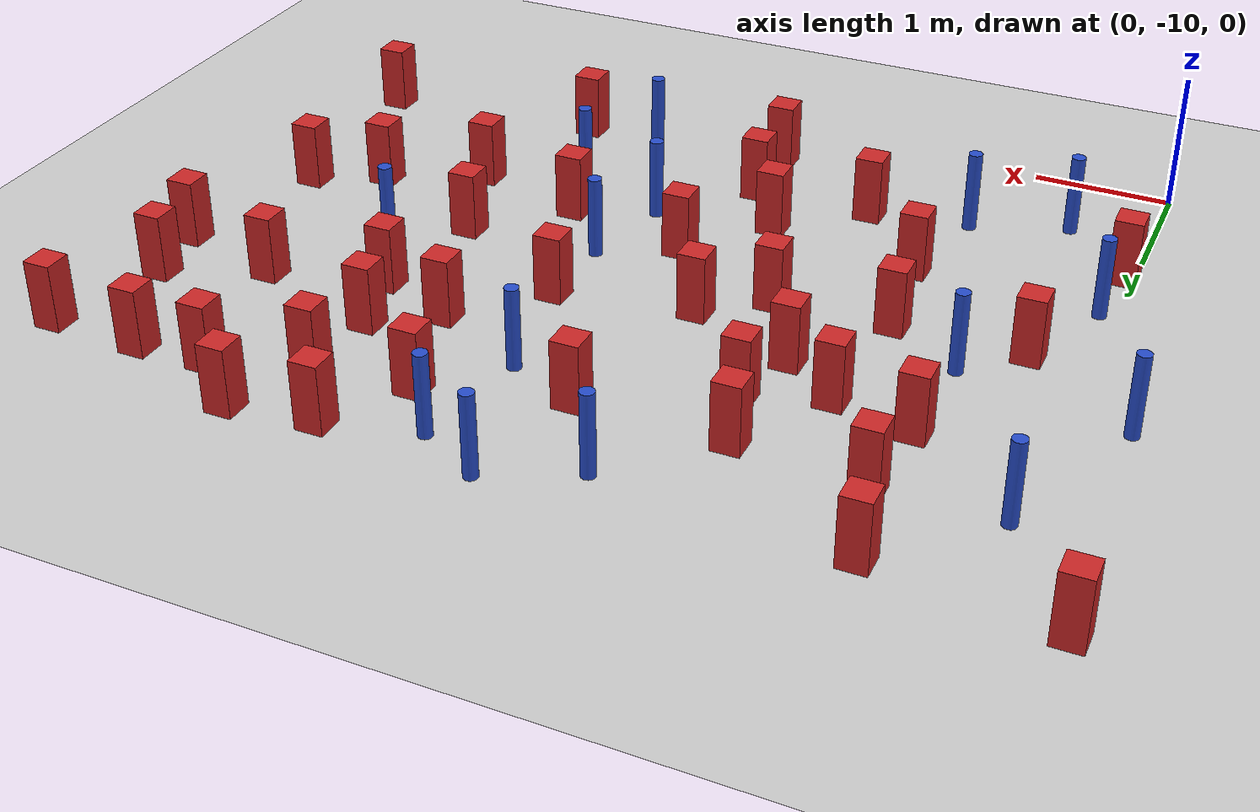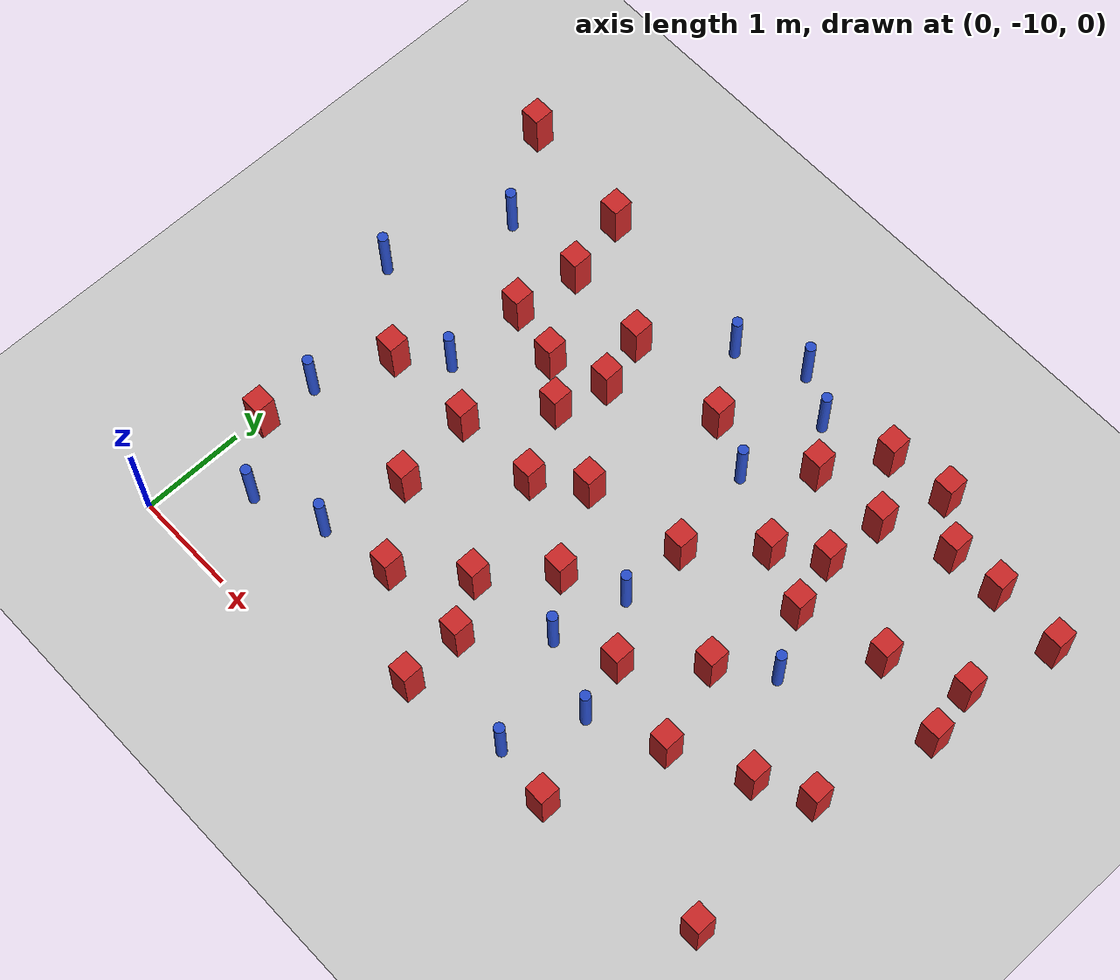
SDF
<sdf version="1.6">
 <world name="default">
  <model name="ground_plane">
   <static>1</static>
   <link name="link">
    <collision name="collision">
     <geometry><plane><normal>0 0 1</normal><size>100 100</size></plane></geometry>
     <surface><friction><ode><mu>100</mu><mu2>50</mu2></ode></friction></surface>
    </collision>
    <visual name="visual">
     <cast_shadows>0</cast_shadows>
     <geometry><plane><normal>0 0 1</normal><size>100 100</size></plane></geometry>
     <material>
      <ambient>1.0 1.0 1.0 1.0</ambient>
      <diffuse>0.8 0.8 0.8 1.0</diffuse>
      <specular>0.01 0.01 0.01 1.000000</specular>
     </material>
    </visual>
   </link>
  </model>
  <model name="square_post_obstacle0">
   <static>true</static>
   <pose>6.00057806063 -7.67909115086 1.91545236811e-07 -7.35059704564e-06 1.12565212e-07 2.39332434364e-05</pose>
   <link name="link">
    <pose>0 0 0.25 0 -0 0</pose>
    <inertial>
     <mass>100</mass>
     <inertia>
      <ixx>0.166667</ixx>
      <ixy>0</ixy>
      <ixz>0</ixz>
      <iyy>0.166667</iyy>
      <iyz>0</iyz>
      <izz>0.166667</izz>
     </inertia>
    </inertial>
    <collision name="collision"><geometry><box><size>.2 .2 .5</size></box></geometry></collision>
    <visual name="visual">
     <geometry><box><size>.2 .2 .5</size></box></geometry>
     <material>
      <script><name>Gazebo/Red</name><uri>file://media/materials/scripts/gazebo.material</uri></script>
     </material>
    </visual>
   </link>
  </model>
  <model name="square_post_obstacle6">
   <static>true</static>
   <pose>4.81548271422 -8.25875250711 1.91545236811e-07 -7.35059704564e-06 1.12565212e-07 2.39332434364e-05</pose>
   <link name="link">
    <pose>0 0 0.25 0 -0 0</pose>
    <inertial>
     <mass>100</mass>
     <inertia>
      <ixx>0.166667</ixx>
      <ixy>0</ixy>
      <ixz>0</ixz>
      <iyy>0.166667</iyy>
      <iyz>0</iyz>
      <izz>0.166667</izz>
     </inertia>
    </inertial>
    <collision name="collision"><geometry><box><size>.2 .2 .5</size></box></geometry></collision>
    <visual name="visual">
     <geometry><box><size>.2 .2 .5</size></box></geometry>
     <material>
      <script><name>Gazebo/Red</name><uri>file://media/materials/scripts/gazebo.material</uri></script>
     </material>
    </visual>
   </link>
  </model>
  <model name="square_post_obstacle7">
   <static>true</static>
   <pose>0.069519349708 -8.7268812761 1.91545236811e-07 -7.35059704564e-06 1.12565212e-07 2.39332434364e-05</pose>
   <link name="link">
    <pose>0 0 0.25 0 -0 0</pose>
    <inertial>
     <mass>100</mass>
     <inertia>
      <ixx>0.166667</ixx>
      <ixy>0</ixy>
      <ixz>0</ixz>
      <iyy>0.166667</iyy>
      <iyz>0</iyz>
      <izz>0.166667</izz>
     </inertia>
    </inertial>
    <collision name="collision"><geometry><box><size>.2 .2 .5</size></box></geometry></collision>
    <visual name="visual">
     <geometry><box><size>.2 .2 .5</size></box></geometry>
     <material>
      <script><name>Gazebo/Red</name><uri>file://media/materials/scripts/gazebo.material</uri></script>
     </material>
    </visual>
   </link>
  </model>
  <model name="square_post_obstacle11">
   <static>true</static>
   <pose>2.8487803578 -8.86418214256 1.91545236811e-07 -7.35059704564e-06 1.12565212e-07 2.39332434364e-05</pose>
   <link name="link">
    <pose>0 0 0.25 0 -0 0</pose>
    <inertial>
     <mass>100</mass>
     <inertia>
      <ixx>0.166667</ixx>
      <ixy>0</ixy>
      <ixz>0</ixz>
      <iyy>0.166667</iyy>
      <iyz>0</iyz>
      <izz>0.166667</izz>
     </inertia>
    </inertial>
    <collision name="collision"><geometry><box><size>.2 .2 .5</size></box></geometry></collision>
    <visual name="visual">
     <geometry><box><size>.2 .2 .5</size></box></geometry>
     <material>
      <script><name>Gazebo/Red</name><uri>file://media/materials/scripts/gazebo.material</uri></script>
     </material>
    </visual>
   </link>
  </model>
  <model name="pole_obstacle22">
   <static>true</static>
   <pose>3.84698611713 -9.26494027626 7.38925637345e-09 -8.47170692793e-08 1.24976764408e-08 -1.74513093041e-07</pose>
   <link name="link">
    <pose>0 0 0.3 0 -0 0</pose>
    <inertial>
     <mass>1</mass>
     <inertia><ixx>0.145833</ixx><ixy>0</ixy><ixz>0</ixz><iyy>0.145833</iyy><iyz>0</iyz><izz>0.125</izz></inertia>
    </inertial>
    <collision name="collision">
     <geometry><cylinder><radius>0.05</radius><length>.6</length></cylinder></geometry>
    </collision>
    <visual name="visual">
     <geometry><cylinder><radius>0.05</radius><length>.6</length></cylinder></geometry>
     <material>
      <script><name>Gazebo/Blue</name><uri>file://media/materials/scripts/gazebo.material</uri></script>
     </material>
    </visual>
   </link>
  </model>
  <model name="square_post_obstacle19">
   <static>true</static>
   <pose>2.55045895626 -8.40171326037 1.91545236811e-07 -7.35059704564e-06 1.12565212e-07 2.39332434364e-05</pose>
   <link name="link">
    <pose>0 0 0.25 0 -0 0</pose>
    <inertial>
     <mass>100</mass>
     <inertia>
      <ixx>0.166667</ixx>
      <ixy>0</ixy>
      <ixz>0</ixz>
      <iyy>0.166667</iyy>
      <iyz>0</iyz>
      <izz>0.166667</izz>
     </inertia>
    </inertial>
    <collision name="collision"><geometry><box><size>.2 .2 .5</size></box></geometry></collision>
    <visual name="visual">
     <geometry><box><size>.2 .2 .5</size></box></geometry>
     <material>
      <script><name>Gazebo/Red</name><uri>file://media/materials/scripts/gazebo.material</uri></script>
     </material>
    </visual>
   </link>
  </model>
  <model name="pole_obstacle31">
   <static>true</static>
   <pose>0.11666212151 -8.17878752543 7.38925637345e-09 -8.47170692796e-08 1.24976764716e-08 -1.74513093036e-07</pose>
   <link name="link">
    <pose>0 0 0.3 0 -0 0</pose>
    <inertial>
     <mass>1</mass>
     <inertia><ixx>0.145833</ixx><ixy>0</ixy><ixz>0</ixz><iyy>0.145833</iyy><iyz>0</iyz><izz>0.125</izz></inertia>
    </inertial>
    <collision name="collision">
     <geometry><cylinder><radius>0.05</radius><length>.6</length></cylinder></geometry>
    </collision>
    <visual name="visual">
     <geometry><cylinder><radius>0.05</radius><length>.6</length></cylinder></geometry>
     <material>
      <script><name>Gazebo/Blue</name><uri>file://media/materials/scripts/gazebo.material</uri></script>
     </material>
    </visual>
   </link>
  </model>
  <model name="pole_obstacle42">
   <static>true</static>
   <pose>1.25775804358 -9.023013283 7.38925637345e-09 -8.47170692798e-08 1.24976764881e-08 -1.74513093027e-07</pose>
   <link name="link">
    <pose>0 0 0.3 0 -0 0</pose>
    <inertial>
     <mass>1</mass>
     <inertia><ixx>0.145833</ixx><ixy>0</ixy><ixz>0</ixz><iyy>0.145833</iyy><iyz>0</iyz><izz>0.125</izz></inertia>
    </inertial>
    <collision name="collision">
     <geometry><cylinder><radius>0.05</radius><length>.6</length></cylinder></geometry>
    </collision>
    <visual name="visual">
     <geometry><cylinder><radius>0.05</radius><length>.6</length></cylinder></geometry>
     <material>
      <script><name>Gazebo/Blue</name><uri>file://media/materials/scripts/gazebo.material</uri></script>
     </material>
    </visual>
   </link>
  </model>
  <model name="square_post_obstacle35">
   <static>true</static>
   <pose>1.40759328073 -6.44161735415 1.91545236811e-07 -7.35059704564e-06 1.12565212e-07 2.39332434364e-05</pose>
   <link name="link">
    <pose>0 0 0.25 0 -0 0</pose>
    <inertial>
     <mass>100</mass>
     <inertia>
      <ixx>0.166667</ixx>
      <ixy>0</ixy>
      <ixz>0</ixz>
      <iyy>0.166667</iyy>
      <iyz>0</iyz>
      <izz>0.166667</izz>
     </inertia>
    </inertial>
    <collision name="collision"><geometry><box><size>.2 .2 .5</size></box></geometry></collision>
    <visual name="visual">
     <geometry><box><size>.2 .2 .5</size></box></geometry>
     <material>
      <script><name>Gazebo/Red</name><uri>file://media/materials/scripts/gazebo.material</uri></script>
     </material>
    </visual>
   </link>
  </model>
  <model name="pole_obstacle54">
   <static>true</static>
   <pose>3.54483944324 -5.08276452937 7.38925637345e-09 -8.47170692798e-08 1.24976765033e-08 -1.74513093019e-07</pose>
   <link name="link">
    <pose>0 0 0.3 0 -0 0</pose>
    <inertial>
     <mass>1</mass>
     <inertia><ixx>0.145833</ixx><ixy>0</ixy><ixz>0</ixz><iyy>0.145833</iyy><iyz>0</iyz><izz>0.125</izz></inertia>
    </inertial>
    <collision name="collision">
     <geometry><cylinder><radius>0.05</radius><length>.6</length></cylinder></geometry>
    </collision>
    <visual name="visual">
     <geometry><cylinder><radius>0.05</radius><length>.6</length></cylinder></geometry>
     <material>
      <script><name>Gazebo/Blue</name><uri>file://media/materials/scripts/gazebo.material</uri></script>
     </material>
    </visual>
   </link>
  </model>
  <model name="square_post_obstacle44">
   <static>true</static>
   <pose>6.20261944694 -6.03981193328 1.91545236811e-07 -7.35059704564e-06 1.12565212e-07 2.39332434364e-05</pose>
   <link name="link">
    <pose>0 0 0.25 0 -0 0</pose>
    <inertial>
     <mass>100</mass>
     <inertia>
      <ixx>0.166667</ixx>
      <ixy>0</ixy>
      <ixz>0</ixz>
      <iyy>0.166667</iyy>
      <iyz>0</iyz>
      <izz>0.166667</izz>
     </inertia>
    </inertial>
    <collision name="collision"><geometry><box><size>.2 .2 .5</size></box></geometry></collision>
    <visual name="visual">
     <geometry><box><size>.2 .2 .5</size></box></geometry>
     <material>
      <script><name>Gazebo/Red</name><uri>file://media/materials/scripts/gazebo.material</uri></script>
     </material>
    </visual>
   </link>
  </model>
  <model name="square_post_obstacle46">
   <static>true</static>
   <pose>4.45149385676 -9.33843573267 1.91545236811e-07 -7.35059704564e-06 1.12565212e-07 2.39332434364e-05</pose>
   <link name="link">
    <pose>0 0 0.25 0 -0 0</pose>
    <inertial>
     <mass>100</mass>
     <inertia>
      <ixx>0.166667</ixx>
      <ixy>0</ixy>
      <ixz>0</ixz>
      <iyy>0.166667</iyy>
      <iyz>0</iyz>
      <izz>0.166667</izz>
     </inertia>
    </inertial>
    <collision name="collision"><geometry><box><size>.2 .2 .5</size></box></geometry></collision>
    <visual name="visual">
     <geometry><box><size>.2 .2 .5</size></box></geometry>
     <material>
      <script><name>Gazebo/Red</name><uri>file://media/materials/scripts/gazebo.material</uri></script>
     </material>
    </visual>
   </link>
  </model>
  <model name="square_post_obstacle48">
   <static>true</static>
   <pose>5.51277770925 -7.9259552581 1.91545236811e-07 -7.35059704564e-06 1.12565212e-07 2.39332434364e-05</pose>
   <link name="link">
    <pose>0 0 0.25 0 -0 0</pose>
    <inertial>
     <mass>100</mass>
     <inertia>
      <ixx>0.166667</ixx>
      <ixy>0</ixy>
      <ixz>0</ixz>
      <iyy>0.166667</iyy>
      <iyz>0</iyz>
      <izz>0.166667</izz>
     </inertia>
    </inertial>
    <collision name="collision"><geometry><box><size>.2 .2 .5</size></box></geometry></collision>
    <visual name="visual">
     <geometry><box><size>.2 .2 .5</size></box></geometry>
     <material>
      <script><name>Gazebo/Red</name><uri>file://media/materials/scripts/gazebo.material</uri></script>
     </material>
    </visual>
   </link>
  </model>
  <model name="square_post_obstacle52">
   <static>true</static>
   <pose>6.29798405064 -6.54312254069 1.91545236811e-07 -7.35059704564e-06 1.12565212e-07 2.39332434364e-05</pose>
   <link name="link">
    <pose>0 0 0.25 0 -0 0</pose>
    <inertial>
     <mass>100</mass>
     <inertia>
      <ixx>0.166667</ixx>
      <ixy>0</ixy>
      <ixz>0</ixz>
      <iyy>0.166667</iyy>
      <iyz>0</iyz>
      <izz>0.166667</izz>
     </inertia>
    </inertial>
    <collision name="collision"><geometry><box><size>.2 .2 .5</size></box></geometry></collision>
    <visual name="visual">
     <geometry><box><size>.2 .2 .5</size></box></geometry>
     <material>
      <script><name>Gazebo/Red</name><uri>file://media/materials/scripts/gazebo.material</uri></script>
     </material>
    </visual>
   </link>
  </model>
  <model name="square_post_obstacle55">
   <static>true</static>
   <pose>1.97393594926 -8.88778729679 1.91545236811e-07 -7.35059704564e-06 1.12565212e-07 2.39332434364e-05</pose>
   <link name="link">
    <pose>0 0 0.25 0 -0 0</pose>
    <inertial>
     <mass>100</mass>
     <inertia>
      <ixx>0.166667</ixx>
      <ixy>0</ixy>
      <ixz>0</ixz>
      <iyy>0.166667</iyy>
      <iyz>0</iyz>
      <izz>0.166667</izz>
     </inertia>
    </inertial>
    <collision name="collision"><geometry><box><size>.2 .2 .5</size></box></geometry></collision>
    <visual name="visual">
     <geometry><box><size>.2 .2 .5</size></box></geometry>
     <material>
      <script><name>Gazebo/Red</name><uri>file://media/materials/scripts/gazebo.material</uri></script>
     </material>
    </visual>
   </link>
  </model>
  <model name="pole_obstacle70">
   <static>true</static>
   <pose>3.56956613083 -7.54567112583 7.38925637345e-09 -8.47170692798e-08 1.24976765033e-08 -1.74513093019e-07</pose>
   <link name="link">
    <pose>0 0 0.3 0 -0 0</pose>
    <inertial>
     <mass>1</mass>
     <inertia><ixx>0.145833</ixx><ixy>0</ixy><ixz>0</ixz><iyy>0.145833</iyy><iyz>0</iyz><izz>0.125</izz></inertia>
    </inertial>
    <collision name="collision">
     <geometry><cylinder><radius>0.05</radius><length>.6</length></cylinder></geometry>
    </collision>
    <visual name="visual">
     <geometry><cylinder><radius>0.05</radius><length>.6</length></cylinder></geometry>
     <material>
      <script><name>Gazebo/Blue</name><uri>file://media/materials/scripts/gazebo.material</uri></script>
     </material>
    </visual>
   </link>
  </model>
  <model name="pole_obstacle71">
   <static>true</static>
   <pose>4.99633791195 -7.09765231327 7.38925637345e-09 -8.47170692796e-08 1.24976764786e-08 -1.74513093032e-07</pose>
   <link name="link">
    <pose>0 0 0.3 0 -0 0</pose>
    <inertial>
     <mass>1</mass>
     <inertia><ixx>0.145833</ixx><ixy>0</ixy><ixz>0</ixz><iyy>0.145833</iyy><iyz>0</iyz><izz>0.125</izz></inertia>
    </inertial>
    <collision name="collision">
     <geometry><cylinder><radius>0.05</radius><length>.6</length></cylinder></geometry>
    </collision>
    <visual name="visual">
     <geometry><cylinder><radius>0.05</radius><length>.6</length></cylinder></geometry>
     <material>
      <script><name>Gazebo/Blue</name><uri>file://media/materials/scripts/gazebo.material</uri></script>
     </material>
    </visual>
   </link>
  </model>
  <model name="square_post_obstacle67">
   <static>true</static>
   <pose>0.417193339511 -7.45800182221 1.91545236811e-07 -7.35059704564e-06 1.12565212e-07 2.39332434364e-05</pose>
   <link name="link">
    <pose>0 0 0.25 0 -0 0</pose>
    <inertial>
     <mass>100</mass>
     <inertia>
      <ixx>0.166667</ixx>
      <ixy>0</ixy>
      <ixz>0</ixz>
      <iyy>0.166667</iyy>
      <iyz>0</iyz>
      <izz>0.166667</izz>
     </inertia>
    </inertial>
    <collision name="collision"><geometry><box><size>.2 .2 .5</size></box></geometry></collision>
    <visual name="visual">
     <geometry><box><size>.2 .2 .5</size></box></geometry>
     <material>
      <script><name>Gazebo/Red</name><uri>file://media/materials/scripts/gazebo.material</uri></script>
     </material>
    </visual>
   </link>
  </model>
  <model name="pole_obstacle87">
   <static>true</static>
   <pose>0.0718617288998 -5.69445943101 7.38925637345e-09 -8.47170692798e-08 1.24976765034e-08 -1.74513093019e-07</pose>
   <link name="link">
    <pose>0 0 0.3 0 -0 0</pose>
    <inertial>
     <mass>1</mass>
     <inertia><ixx>0.145833</ixx><ixy>0</ixy><ixz>0</ixz><iyy>0.145833</iyy><iyz>0</iyz><izz>0.125</izz></inertia>
    </inertial>
    <collision name="collision">
     <geometry><cylinder><radius>0.05</radius><length>.6</length></cylinder></geometry>
    </collision>
    <visual name="visual">
     <geometry><cylinder><radius>0.05</radius><length>.6</length></cylinder></geometry>
     <material>
      <script><name>Gazebo/Blue</name><uri>file://media/materials/scripts/gazebo.material</uri></script>
     </material>
    </visual>
   </link>
  </model>
  <model name="pole_obstacle88">
   <static>true</static>
   <pose>2.46176348016 -5.12404222048 7.38925637345e-09 -8.47170692798e-08 1.24976765033e-08 -1.74513093019e-07</pose>
   <link name="link">
    <pose>0 0 0.3 0 -0 0</pose>
    <inertial>
     <mass>1</mass>
     <inertia><ixx>0.145833</ixx><ixy>0</ixy><ixz>0</ixz><iyy>0.145833</iyy><iyz>0</iyz><izz>0.125</izz></inertia>
    </inertial>
    <collision name="collision">
     <geometry><cylinder><radius>0.05</radius><length>.6</length></cylinder></geometry>
    </collision>
    <visual name="visual">
     <geometry><cylinder><radius>0.05</radius><length>.6</length></cylinder></geometry>
     <material>
      <script><name>Gazebo/Blue</name><uri>file://media/materials/scripts/gazebo.material</uri></script>
     </material>
    </visual>
   </link>
  </model>
  <model name="square_post_obstacle83">
   <static>true</static>
   <pose>3.03000625993 -7.81368479536 1.91545236811e-07 -7.35059704564e-06 1.12565212e-07 2.39332434364e-05</pose>
   <link name="link">
    <pose>0 0 0.25 0 -0 0</pose>
    <inertial>
     <mass>100</mass>
     <inertia>
      <ixx>0.166667</ixx>
      <ixy>0</ixy>
      <ixz>0</ixz>
      <iyy>0.166667</iyy>
      <iyz>0</iyz>
      <izz>0.166667</izz>
     </inertia>
    </inertial>
    <collision name="collision"><geometry><box><size>.2 .2 .5</size></box></geometry></collision>
    <visual name="visual">
     <geometry><box><size>.2 .2 .5</size></box></geometry>
     <material>
      <script><name>Gazebo/Red</name><uri>file://media/materials/scripts/gazebo.material</uri></script>
     </material>
    </visual>
   </link>
  </model>
  <model name="pole_obstacle91">
   <static>true</static>
   <pose>-0.378807224584 -6.85980722933 7.38925637345e-09 -8.471706928e-08 1.24976765079e-08 -1.74513093015e-07</pose>
   <link name="link">
    <pose>0 0 0.3 0 -0 0</pose>
    <inertial>
     <mass>1</mass>
     <inertia><ixx>0.145833</ixx><ixy>0</ixy><ixz>0</ixz><iyy>0.145833</iyy><iyz>0</iyz><izz>0.125</izz></inertia>
    </inertial>
    <collision name="collision">
     <geometry><cylinder><radius>0.05</radius><length>.6</length></cylinder></geometry>
    </collision>
    <visual name="visual">
     <geometry><cylinder><radius>0.05</radius><length>.6</length></cylinder></geometry>
     <material>
      <script><name>Gazebo/Blue</name><uri>file://media/materials/scripts/gazebo.material</uri></script>
     </material>
    </visual>
   </link>
  </model>
  <model name="square_post_obstacle86">
   <static>true</static>
   <pose>5.22717372035 -5.18604612755 1.91545236811e-07 -7.35059704564e-06 1.12565212e-07 2.39332434364e-05</pose>
   <link name="link">
    <pose>0 0 0.25 0 -0 0</pose>
    <inertial>
     <mass>100</mass>
     <inertia>
      <ixx>0.166667</ixx>
      <ixy>0</ixy>
      <ixz>0</ixz>
      <iyy>0.166667</iyy>
      <iyz>0</iyz>
      <izz>0.166667</izz>
     </inertia>
    </inertial>
    <collision name="collision"><geometry><box><size>.2 .2 .5</size></box></geometry></collision>
    <visual name="visual">
     <geometry><box><size>.2 .2 .5</size></box></geometry>
     <material>
      <script><name>Gazebo/Red</name><uri>file://media/materials/scripts/gazebo.material</uri></script>
     </material>
    </visual>
   </link>
  </model>
  <model name="square_post_obstacle96">
   <static>true</static>
   <pose>-0.473470908032 -4.86741615682 1.91545236811e-07 -7.35059704564e-06 1.12565212e-07 2.39332434364e-05</pose>
   <link name="link">
    <pose>0 0 0.25 0 -0 0</pose>
    <inertial>
     <mass>100</mass>
     <inertia>
      <ixx>0.166667</ixx>
      <ixy>0</ixy>
      <ixz>0</ixz>
      <iyy>0.166667</iyy>
      <iyz>0</iyz>
      <izz>0.166667</izz>
     </inertia>
    </inertial>
    <collision name="collision"><geometry><box><size>.2 .2 .5</size></box></geometry></collision>
    <visual name="visual">
     <geometry><box><size>.2 .2 .5</size></box></geometry>
     <material>
      <script><name>Gazebo/Red</name><uri>file://media/materials/scripts/gazebo.material</uri></script>
     </material>
    </visual>
   </link>
  </model>
  <model name="square_post_obstacle98">
   <static>true</static>
   <pose>1.4305880037 -8.22308311485 1.91545236811e-07 -7.35059704564e-06 1.12565212e-07 2.39332434364e-05</pose>
   <link name="link">
    <pose>0 0 0.25 0 -0 0</pose>
    <inertial>
     <mass>100</mass>
     <inertia>
      <ixx>0.166667</ixx>
      <ixy>0</ixy>
      <ixz>0</ixz>
      <iyy>0.166667</iyy>
      <iyz>0</iyz>
      <izz>0.166667</izz>
     </inertia>
    </inertial>
    <collision name="collision"><geometry><box><size>.2 .2 .5</size></box></geometry></collision>
    <visual name="visual">
     <geometry><box><size>.2 .2 .5</size></box></geometry>
     <material>
      <script><name>Gazebo/Red</name><uri>file://media/materials/scripts/gazebo.material</uri></script>
     </material>
    </visual>
   </link>
  </model>
  <model name="square_post_obstacle114">
   <static>true</static>
   <pose>0.910536494194 -5.66375329734 1.91545236811e-07 -7.35059704564e-06 1.12565212e-07 2.39332434364e-05</pose>
   <link name="link">
    <pose>0 0 0.25 0 -0 0</pose>
    <inertial>
     <mass>100</mass>
     <inertia>
      <ixx>0.166667</ixx>
      <ixy>0</ixy>
      <ixz>0</ixz>
      <iyy>0.166667</iyy>
      <iyz>0</iyz>
      <izz>0.166667</izz>
     </inertia>
    </inertial>
    <collision name="collision"><geometry><box><size>.2 .2 .5</size></box></geometry></collision>
    <visual name="visual">
     <geometry><box><size>.2 .2 .5</size></box></geometry>
     <material>
      <script><name>Gazebo/Red</name><uri>file://media/materials/scripts/gazebo.material</uri></script>
     </material>
    </visual>
   </link>
  </model>
  <model name="pole_obstacle116">
   <static>true</static>
   <pose>3.40392233019 -5.98174513589 7.38925637345e-09 -8.47170692798e-08 1.24976765033e-08 -1.74513093019e-07</pose>
   <link name="link">
    <pose>0 0 0.3 0 -0 0</pose>
    <inertial>
     <mass>1</mass>
     <inertia><ixx>0.145833</ixx><ixy>0</ixy><ixz>0</ixz><iyy>0.145833</iyy><iyz>0</iyz><izz>0.125</izz></inertia>
    </inertial>
    <collision name="collision">
     <geometry><cylinder><radius>0.05</radius><length>.6</length></cylinder></geometry>
    </collision>
    <visual name="visual">
     <geometry><cylinder><radius>0.05</radius><length>.6</length></cylinder></geometry>
     <material>
      <script><name>Gazebo/Blue</name><uri>file://media/materials/scripts/gazebo.material</uri></script>
     </material>
    </visual>
   </link>
  </model>
  <model name="square_post_obstacle119">
   <static>true</static>
   <pose>1.81277922714 -6.75007044403 1.91545236811e-07 -7.35059704564e-06 1.12565212e-07 2.39332434364e-05</pose>
   <link name="link">
    <pose>0 0 0.25 0 -0 0</pose>
    <inertial>
     <mass>100</mass>
     <inertia>
      <ixx>0.166667</ixx>
      <ixy>0</ixy>
      <ixz>0</ixz>
      <iyy>0.166667</iyy>
      <iyz>0</iyz>
      <izz>0.166667</izz>
     </inertia>
    </inertial>
    <collision name="collision"><geometry><box><size>.2 .2 .5</size></box></geometry></collision>
    <visual name="visual">
     <geometry><box><size>.2 .2 .5</size></box></geometry>
     <material>
      <script><name>Gazebo/Red</name><uri>file://media/materials/scripts/gazebo.material</uri></script>
     </material>
    </visual>
   </link>
  </model>
  <model name="square_post_obstacle121">
   <static>true</static>
   <pose>4.20602088468 -4.90201712158 1.91545236811e-07 -7.35059704564e-06 1.12565212e-07 2.39332434364e-05</pose>
   <link name="link">
    <pose>0 0 0.25 0 -0 0</pose>
    <inertial>
     <mass>100</mass>
     <inertia>
      <ixx>0.166667</ixx>
      <ixy>0</ixy>
      <ixz>0</ixz>
      <iyy>0.166667</iyy>
      <iyz>0</iyz>
      <izz>0.166667</izz>
     </inertia>
    </inertial>
    <collision name="collision"><geometry><box><size>.2 .2 .5</size></box></geometry></collision>
    <visual name="visual">
     <geometry><box><size>.2 .2 .5</size></box></geometry>
     <material>
      <script><name>Gazebo/Red</name><uri>file://media/materials/scripts/gazebo.material</uri></script>
     </material>
    </visual>
   </link>
  </model>
  <model name="square_post_obstacle123">
   <static>true</static>
   <pose>1.95048266468 -6.25085209045 1.91545236811e-07 -7.35059704564e-06 1.12565212e-07 2.39332434364e-05</pose>
   <link name="link">
    <pose>0 0 0.25 0 -0 0</pose>
    <inertial>
     <mass>100</mass>
     <inertia>
      <ixx>0.166667</ixx>
      <ixy>0</ixy>
      <ixz>0</ixz>
      <iyy>0.166667</iyy>
      <iyz>0</iyz>
      <izz>0.166667</izz>
     </inertia>
    </inertial>
    <collision name="collision"><geometry><box><size>.2 .2 .5</size></box></geometry></collision>
    <visual name="visual">
     <geometry><box><size>.2 .2 .5</size></box></geometry>
     <material>
      <script><name>Gazebo/Red</name><uri>file://media/materials/scripts/gazebo.material</uri></script>
     </material>
    </visual>
   </link>
  </model>
  <model name="square_post_obstacle124">
   <static>true</static>
   <pose>6.1214636215 -9.15910931825 1.91545236811e-07 -7.35059704564e-06 1.12565212e-07 2.39332434364e-05</pose>
   <link name="link">
    <pose>0 0 0.25 0 -0 0</pose>
    <inertial>
     <mass>100</mass>
     <inertia>
      <ixx>0.166667</ixx>
      <ixy>0</ixy>
      <ixz>0</ixz>
      <iyy>0.166667</iyy>
      <iyz>0</iyz>
      <izz>0.166667</izz>
     </inertia>
    </inertial>
    <collision name="collision"><geometry><box><size>.2 .2 .5</size></box></geometry></collision>
    <visual name="visual">
     <geometry><box><size>.2 .2 .5</size></box></geometry>
     <material>
      <script><name>Gazebo/Red</name><uri>file://media/materials/scripts/gazebo.material</uri></script>
     </material>
    </visual>
   </link>
  </model>
  <model name="square_post_obstacle132">
   <static>true</static>
   <pose>4.11173866162 -6.32489457207 1.91545236811e-07 -7.35059704564e-06 1.12565212e-07 2.39332434364e-05</pose>
   <link name="link">
    <pose>0 0 0.25 0 -0 0</pose>
    <inertial>
     <mass>100</mass>
     <inertia>
      <ixx>0.166667</ixx>
      <ixy>0</ixy>
      <ixz>0</ixz>
      <iyy>0.166667</iyy>
      <iyz>0</iyz>
      <izz>0.166667</izz>
     </inertia>
    </inertial>
    <collision name="collision"><geometry><box><size>.2 .2 .5</size></box></geometry></collision>
    <visual name="visual">
     <geometry><box><size>.2 .2 .5</size></box></geometry>
     <material>
      <script><name>Gazebo/Red</name><uri>file://media/materials/scripts/gazebo.material</uri></script>
     </material>
    </visual>
   </link>
  </model>
  <model name="pole_obstacle133">
   <static>true</static>
   <pose>0.575048275699 -9.27250660505 7.38925637345e-09 -8.47170692797e-08 1.249767648e-08 -1.74513093032e-07</pose>
   <link name="link">
    <pose>0 0 0.3 0 -0 0</pose>
    <inertial>
     <mass>1</mass>
     <inertia><ixx>0.145833</ixx><ixy>0</ixy><ixz>0</ixz><iyy>0.145833</iyy><iyz>0</iyz><izz>0.125</izz></inertia>
    </inertial>
    <collision name="collision">
     <geometry><cylinder><radius>0.05</radius><length>.6</length></cylinder></geometry>
    </collision>
    <visual name="visual">
     <geometry><cylinder><radius>0.05</radius><length>.6</length></cylinder></geometry>
     <material>
      <script><name>Gazebo/Blue</name><uri>file://media/materials/scripts/gazebo.material</uri></script>
     </material>
    </visual>
   </link>
  </model>
  <model name="square_post_obstacle135">
   <static>true</static>
   <pose>6.44556953031 -5.19611274546 1.91545236811e-07 -7.35059704564e-06 1.12565212e-07 2.39332434364e-05</pose>
   <link name="link">
    <pose>0 0 0.25 0 -0 0</pose>
    <inertial>
     <mass>100</mass>
     <inertia>
      <ixx>0.166667</ixx>
      <ixy>0</ixy>
      <ixz>0</ixz>
      <iyy>0.166667</iyy>
      <iyz>0</iyz>
      <izz>0.166667</izz>
     </inertia>
    </inertial>
    <collision name="collision"><geometry><box><size>.2 .2 .5</size></box></geometry></collision>
    <visual name="visual">
     <geometry><box><size>.2 .2 .5</size></box></geometry>
     <material>
      <script><name>Gazebo/Red</name><uri>file://media/materials/scripts/gazebo.material</uri></script>
     </material>
    </visual>
   </link>
  </model>
  <model name="square_post_obstacle137">
   <static>true</static>
   <pose>0.756522787762 -5.00932137144 1.91545236811e-07 -7.35059704564e-06 1.12565212e-07 2.39332434364e-05</pose>
   <link name="link">
    <pose>0 0 0.25 0 -0 0</pose>
    <inertial>
     <mass>100</mass>
     <inertia>
      <ixx>0.166667</ixx>
      <ixy>0</ixy>
      <ixz>0</ixz>
      <iyy>0.166667</iyy>
      <iyz>0</iyz>
      <izz>0.166667</izz>
     </inertia>
    </inertial>
    <collision name="collision"><geometry><box><size>.2 .2 .5</size></box></geometry></collision>
    <visual name="visual">
     <geometry><box><size>.2 .2 .5</size></box></geometry>
     <material>
      <script><name>Gazebo/Red</name><uri>file://media/materials/scripts/gazebo.material</uri></script>
     </material>
    </visual>
   </link>
  </model>
  <model name="pole_obstacle145">
   <static>true</static>
   <pose>4.12847943496 -8.54805804919 7.38925637345e-09 -8.471706928e-08 1.24976765081e-08 -1.74513093015e-07</pose>
   <link name="link">
    <pose>0 0 0.3 0 -0 0</pose>
    <inertial>
     <mass>1</mass>
     <inertia><ixx>0.145833</ixx><ixy>0</ixy><ixz>0</ixz><iyy>0.145833</iyy><iyz>0</iyz><izz>0.125</izz></inertia>
    </inertial>
    <collision name="collision">
     <geometry><cylinder><radius>0.05</radius><length>.6</length></cylinder></geometry>
    </collision>
    <visual name="visual">
     <geometry><cylinder><radius>0.05</radius><length>.6</length></cylinder></geometry>
     <material>
      <script><name>Gazebo/Blue</name><uri>file://media/materials/scripts/gazebo.material</uri></script>
     </material>
    </visual>
   </link>
  </model>
  <model name="pole_obstacle149">
   <static>true</static>
   <pose>3.41470177516 -8.26347411653 7.38925637345e-09 -8.47170692793e-08 1.24976764408e-08 -1.74513093041e-07</pose>
   <link name="link">
    <pose>0 0 0.3 0 -0 0</pose>
    <inertial>
     <mass>1</mass>
     <inertia><ixx>0.145833</ixx><ixy>0</ixy><ixz>0</ixz><iyy>0.145833</iyy><iyz>0</iyz><izz>0.125</izz></inertia>
    </inertial>
    <collision name="collision">
     <geometry><cylinder><radius>0.05</radius><length>.6</length></cylinder></geometry>
    </collision>
    <visual name="visual">
     <geometry><cylinder><radius>0.05</radius><length>.6</length></cylinder></geometry>
     <material>
      <script><name>Gazebo/Blue</name><uri>file://media/materials/scripts/gazebo.material</uri></script>
     </material>
    </visual>
   </link>
  </model>
  <model name="square_post_obstacle142">
   <static>true</static>
   <pose>4.82337948032 -4.82684251459 1.91545236811e-07 -7.35059704564e-06 1.12565212e-07 2.39332434364e-05</pose>
   <link name="link">
    <pose>0 0 0.25 0 -0 0</pose>
    <inertial>
     <mass>100</mass>
     <inertia>
      <ixx>0.166667</ixx>
      <ixy>0</ixy>
      <ixz>0</ixz>
      <iyy>0.166667</iyy>
      <iyz>0</iyz>
      <izz>0.166667</izz>
     </inertia>
    </inertial>
    <collision name="collision"><geometry><box><size>.2 .2 .5</size></box></geometry></collision>
    <visual name="visual">
     <geometry><box><size>.2 .2 .5</size></box></geometry>
     <material>
      <script><name>Gazebo/Red</name><uri>file://media/materials/scripts/gazebo.material</uri></script>
     </material>
    </visual>
   </link>
  </model>
  <model name="square_post_obstacle147">
   <static>true</static>
   <pose>3.57824013905 -6.89866973371 1.91545236811e-07 -7.35059704564e-06 1.12565212e-07 2.39332434364e-05</pose>
   <link name="link">
    <pose>0 0 0.25 0 -0 0</pose>
    <inertial>
     <mass>100</mass>
     <inertia>
      <ixx>0.166667</ixx>
      <ixy>0</ixy>
      <ixz>0</ixz>
      <iyy>0.166667</iyy>
      <iyz>0</iyz>
      <izz>0.166667</izz>
     </inertia>
    </inertial>
    <collision name="collision"><geometry><box><size>.2 .2 .5</size></box></geometry></collision>
    <visual name="visual">
     <geometry><box><size>.2 .2 .5</size></box></geometry>
     <material>
      <script><name>Gazebo/Red</name><uri>file://media/materials/scripts/gazebo.material</uri></script>
     </material>
    </visual>
   </link>
  </model>
  <model name="square_post_obstacle151">
   <static>true</static>
   <pose>4.5899742558 -5.44172313131 1.91545236811e-07 -7.35059704564e-06 1.12565212e-07 2.39332434364e-05</pose>
   <link name="link">
    <pose>0 0 0.25 0 -0 0</pose>
    <inertial>
     <mass>100</mass>
     <inertia>
      <ixx>0.166667</ixx>
      <ixy>0</ixy>
      <ixz>0</ixz>
      <iyy>0.166667</iyy>
      <iyz>0</iyz>
      <izz>0.166667</izz>
     </inertia>
    </inertial>
    <collision name="collision"><geometry><box><size>.2 .2 .5</size></box></geometry></collision>
    <visual name="visual">
     <geometry><box><size>.2 .2 .5</size></box></geometry>
     <material>
      <script><name>Gazebo/Red</name><uri>file://media/materials/scripts/gazebo.material</uri></script>
     </material>
    </visual>
   </link>
  </model>
  <model name="square_post_obstacle157">
   <static>true</static>
   <pose>5.50197988703 -6.33063722425 1.91545236811e-07 -7.35059704564e-06 1.12565212e-07 2.39332434364e-05</pose>
   <link name="link">
    <pose>0 0 0.25 0 -0 0</pose>
    <inertial>
     <mass>100</mass>
     <inertia>
      <ixx>0.166667</ixx>
      <ixy>0</ixy>
      <ixz>0</ixz>
      <iyy>0.166667</iyy>
      <iyz>0</iyz>
      <izz>0.166667</izz>
     </inertia>
    </inertial>
    <collision name="collision"><geometry><box><size>.2 .2 .5</size></box></geometry></collision>
    <visual name="visual">
     <geometry><box><size>.2 .2 .5</size></box></geometry>
     <material>
      <script><name>Gazebo/Red</name><uri>file://media/materials/scripts/gazebo.material</uri></script>
     </material>
    </visual>
   </link>
  </model>
  <model name="square_post_obstacle163">
   <static>true</static>
   <pose>5.74144041084 -5.16583634656 1.91545236811e-07 -7.35059704564e-06 1.12565212e-07 2.39332434364e-05</pose>
   <link name="link">
    <pose>0 0 0.25 0 -0 0</pose>
    <inertial>
     <mass>100</mass>
     <inertia>
      <ixx>0.166667</ixx>
      <ixy>0</ixy>
      <ixz>0</ixz>
      <iyy>0.166667</iyy>
      <iyz>0</iyz>
      <izz>0.166667</izz>
     </inertia>
    </inertial>
    <collision name="collision"><geometry><box><size>.2 .2 .5</size></box></geometry></collision>
    <visual name="visual">
     <geometry><box><size>.2 .2 .5</size></box></geometry>
     <material>
      <script><name>Gazebo/Red</name><uri>file://media/materials/scripts/gazebo.material</uri></script>
     </material>
    </visual>
   </link>
  </model>
  <model name="square_post_obstacle168">
   <static>true</static>
   <pose>1.81114040204 -5.75249490271 1.91545236811e-07 -7.35059704564e-06 1.12565212e-07 2.39332434364e-05</pose>
   <link name="link">
    <pose>0 0 0.25 0 -0 0</pose>
    <inertial>
     <mass>100</mass>
     <inertia>
      <ixx>0.166667</ixx>
      <ixy>0</ixy>
      <ixz>0</ixz>
      <iyy>0.166667</iyy>
      <iyz>0</iyz>
      <izz>0.166667</izz>
     </inertia>
    </inertial>
    <collision name="collision"><geometry><box><size>.2 .2 .5</size></box></geometry></collision>
    <visual name="visual">
     <geometry><box><size>.2 .2 .5</size></box></geometry>
     <material>
      <script><name>Gazebo/Red</name><uri>file://media/materials/scripts/gazebo.material</uri></script>
     </material>
    </visual>
   </link>
  </model>
  <model name="square_post_obstacle171">
   <static>true</static>
   <pose>4.68354197191 -6.55301699313 1.91545236811e-07 -7.35059704564e-06 1.12565212e-07 2.39332434364e-05</pose>
   <link name="link">
    <pose>0 0 0.25 0 -0 0</pose>
    <inertial>
     <mass>100</mass>
     <inertia>
      <ixx>0.166667</ixx>
      <ixy>0</ixy>
      <ixz>0</ixz>
      <iyy>0.166667</iyy>
      <iyz>0</iyz>
      <izz>0.166667</izz>
     </inertia>
    </inertial>
    <collision name="collision"><geometry><box><size>.2 .2 .5</size></box></geometry></collision>
    <visual name="visual">
     <geometry><box><size>.2 .2 .5</size></box></geometry>
     <material>
      <script><name>Gazebo/Red</name><uri>file://media/materials/scripts/gazebo.material</uri></script>
     </material>
    </visual>
   </link>
  </model>
  <model name="pole_obstacle172">
   <static>true</static>
   <pose>3.08952147907 -4.82705677409 7.38925637345e-09 -8.47170692798e-08 1.24976765033e-08 -1.74513093019e-07</pose>
   <link name="link">
    <pose>0 0 0.3 0 -0 0</pose>
    <inertial>
     <mass>1</mass>
     <inertia><ixx>0.145833</ixx><ixy>0</ixy><ixz>0</ixz><iyy>0.145833</iyy><iyz>0</iyz><izz>0.125</izz></inertia>
    </inertial>
    <collision name="collision">
     <geometry><cylinder><radius>0.05</radius><length>.6</length></cylinder></geometry>
    </collision>
    <visual name="visual">
     <geometry><cylinder><radius>0.05</radius><length>.6</length></cylinder></geometry>
     <material>
      <script><name>Gazebo/Blue</name><uri>file://media/materials/scripts/gazebo.material</uri></script>
     </material>
    </visual>
   </link>
  </model>
  <model name="square_post_obstacle172">
   <static>true</static>
   <pose>4.54429984139 -7.46857510499 1.91545236811e-07 -7.35059704564e-06 1.12565212e-07 2.39332434364e-05</pose>
   <link name="link">
    <pose>0 0 0.25 0 -0 0</pose>
    <inertial>
     <mass>100</mass>
     <inertia>
      <ixx>0.166667</ixx>
      <ixy>0</ixy>
      <ixz>0</ixz>
      <iyy>0.166667</iyy>
      <iyz>0</iyz>
      <izz>0.166667</izz>
     </inertia>
    </inertial>
    <collision name="collision"><geometry><box><size>.2 .2 .5</size></box></geometry></collision>
    <visual name="visual">
     <geometry><box><size>.2 .2 .5</size></box></geometry>
     <material>
      <script><name>Gazebo/Red</name><uri>file://media/materials/scripts/gazebo.material</uri></script>
     </material>
    </visual>
   </link>
  </model>
  <model name="square_post_obstacle179">
   <static>true</static>
   <pose>1.33465574663 -7.44360158749 1.91545236811e-07 -7.35059704564e-06 1.12565212e-07 2.39332434364e-05</pose>
   <link name="link">
    <pose>0 0 0.25 0 -0 0</pose>
    <inertial>
     <mass>100</mass>
     <inertia>
      <ixx>0.166667</ixx>
      <ixy>0</ixy>
      <ixz>0</ixz>
      <iyy>0.166667</iyy>
      <iyz>0</iyz>
      <izz>0.166667</izz>
     </inertia>
    </inertial>
    <collision name="collision"><geometry><box><size>.2 .2 .5</size></box></geometry></collision>
    <visual name="visual">
     <geometry><box><size>.2 .2 .5</size></box></geometry>
     <material>
      <script><name>Gazebo/Red</name><uri>file://media/materials/scripts/gazebo.material</uri></script>
     </material>
    </visual>
   </link>
  </model>
  <model name="square_post_obstacle183">
   <static>true</static>
   <pose>3.85699863004 -5.48165953572 1.91545236811e-07 -7.35059704564e-06 1.12565212e-07 2.39332434364e-05</pose>
   <link name="link">
    <pose>0 0 0.25 0 -0 0</pose>
    <inertial>
     <mass>100</mass>
     <inertia>
      <ixx>0.166667</ixx>
      <ixy>0</ixy>
      <ixz>0</ixz>
      <iyy>0.166667</iyy>
      <iyz>0</iyz>
      <izz>0.166667</izz>
     </inertia>
    </inertial>
    <collision name="collision"><geometry><box><size>.2 .2 .5</size></box></geometry></collision>
    <visual name="visual">
     <geometry><box><size>.2 .2 .5</size></box></geometry>
     <material>
      <script><name>Gazebo/Red</name><uri>file://media/materials/scripts/gazebo.material</uri></script>
     </material>
    </visual>
   </link>
  </model>
  <model name="pole_obstacle185">
   <static>true</static>
   <pose>0.801144289437 -7.10897653251 7.38925637345e-09 -8.471706928e-08 1.24976765086e-08 -1.74513093015e-07</pose>
   <link name="link">
    <pose>0 0 0.3 0 -0 0</pose>
    <inertial>
     <mass>1</mass>
     <inertia><ixx>0.145833</ixx><ixy>0</ixy><ixz>0</ixz><iyy>0.145833</iyy><iyz>0</iyz><izz>0.125</izz></inertia>
    </inertial>
    <collision name="collision">
     <geometry><cylinder><radius>0.05</radius><length>.6</length></cylinder></geometry>
    </collision>
    <visual name="visual">
     <geometry><cylinder><radius>0.05</radius><length>.6</length></cylinder></geometry>
     <material>
      <script><name>Gazebo/Blue</name><uri>file://media/materials/scripts/gazebo.material</uri></script>
     </material>
    </visual>
   </link>
  </model>
  <model name="square_post_obstacle193">
   <static>true</static>
   <pose>2.59550447008 -7.07045795062 1.91545236811e-07 -7.35059704564e-06 1.12565212e-07 2.39332434364e-05</pose>
   <link name="link">
    <pose>0 0 0.25 0 -0 0</pose>
    <inertial>
     <mass>100</mass>
     <inertia>
      <ixx>0.166667</ixx>
      <ixy>0</ixy>
      <ixz>0</ixz>
      <iyy>0.166667</iyy>
      <iyz>0</iyz>
      <izz>0.166667</izz>
     </inertia>
    </inertial>
    <collision name="collision"><geometry><box><size>.2 .2 .5</size></box></geometry></collision>
    <visual name="visual">
     <geometry><box><size>.2 .2 .5</size></box></geometry>
     <material>
      <script><name>Gazebo/Red</name><uri>file://media/materials/scripts/gazebo.material</uri></script>
     </material>
    </visual>
   </link>
  </model>
  <model name="square_post_obstacle203">
   <static>true</static>
   <pose>2.17555233555 -7.40218046719 1.91545236811e-07 -7.35059704564e-06 1.12565212e-07 2.39332434364e-05</pose>
   <link name="link">
    <pose>0 0 0.25 0 -0 0</pose>
    <inertial>
     <mass>100</mass>
     <inertia>
      <ixx>0.166667</ixx>
      <ixy>0</ixy>
      <ixz>0</ixz>
      <iyy>0.166667</iyy>
      <iyz>0</iyz>
      <izz>0.166667</izz>
     </inertia>
    </inertial>
    <collision name="collision"><geometry><box><size>.2 .2 .5</size></box></geometry></collision>
    <visual name="visual">
     <geometry><box><size>.2 .2 .5</size></box></geometry>
     <material>
      <script><name>Gazebo/Red</name><uri>file://media/materials/scripts/gazebo.material</uri></script>
     </material>
    </visual>
   </link>
  </model>
  <model name="square_post_obstacle204">
   <static>true</static>
   <pose>0.834064383457 -6.31407679985 1.91545236811e-07 -7.35059704564e-06 1.12565212e-07 2.39332434364e-05</pose>
   <link name="link">
    <pose>0 0 0.25 0 -0 0</pose>
    <inertial>
     <mass>100</mass>
     <inertia>
      <ixx>0.166667</ixx>
      <ixy>0</ixy>
      <ixz>0</ixz>
      <iyy>0.166667</iyy>
      <iyz>0</iyz>
      <izz>0.166667</izz>
     </inertia>
    </inertial>
    <collision name="collision"><geometry><box><size>.2 .2 .5</size></box></geometry></collision>
    <visual name="visual">
     <geometry><box><size>.2 .2 .5</size></box></geometry>
     <material>
      <script><name>Gazebo/Red</name><uri>file://media/materials/scripts/gazebo.material</uri></script>
     </material>
    </visual>
   </link>
  </model>
  <model name="square_post_obstacle216">
   <static>true</static>
   <pose>2.88132486475 -5.75779366831 1.91545236811e-07 -7.35059704564e-06 1.12565212e-07 2.39332434364e-05</pose>
   <link name="link">
    <pose>0 0 0.25 0 -0 0</pose>
    <inertial>
     <mass>100</mass>
     <inertia>
      <ixx>0.166667</ixx>
      <ixy>0</ixy>
      <ixz>0</ixz>
      <iyy>0.166667</iyy>
      <iyz>0</iyz>
      <izz>0.166667</izz>
     </inertia>
    </inertial>
    <collision name="collision"><geometry><box><size>.2 .2 .5</size></box></geometry></collision>
    <visual name="visual">
     <geometry><box><size>.2 .2 .5</size></box></geometry>
     <material>
      <script><name>Gazebo/Red</name><uri>file://media/materials/scripts/gazebo.material</uri></script>
     </material>
    </visual>
   </link>
  </model>
  <model name="square_post_obstacle219">
   <static>true</static>
   <pose>4.53574134886 -6.03291602842 1.91545236811e-07 -7.35059704564e-06 1.12565212e-07 2.39332434364e-05</pose>
   <link name="link">
    <pose>0 0 0.25 0 -0 0</pose>
    <inertial>
     <mass>100</mass>
     <inertia>
      <ixx>0.166667</ixx>
      <ixy>0</ixy>
      <ixz>0</ixz>
      <iyy>0.166667</iyy>
      <iyz>0</iyz>
      <izz>0.166667</izz>
     </inertia>
    </inertial>
    <collision name="collision"><geometry><box><size>.2 .2 .5</size></box></geometry></collision>
    <visual name="visual">
     <geometry><box><size>.2 .2 .5</size></box></geometry>
     <material>
      <script><name>Gazebo/Red</name><uri>file://media/materials/scripts/gazebo.material</uri></script>
     </material>
    </visual>
   </link>
  </model>
  <model name="square_post_obstacle220">
   <static>true</static>
   <pose>3.97397813498 -8.03302934095 1.91545236811e-07 -7.35059704564e-06 1.12565212e-07 2.39332434364e-05</pose>
   <link name="link">
    <pose>0 0 0.25 0 -0 0</pose>
    <inertial>
     <mass>100</mass>
     <inertia>
      <ixx>0.166667</ixx>
      <ixy>0</ixy>
      <ixz>0</ixz>
      <iyy>0.166667</iyy>
      <iyz>0</iyz>
      <izz>0.166667</izz>
     </inertia>
    </inertial>
    <collision name="collision"><geometry><box><size>.2 .2 .5</size></box></geometry></collision>
    <visual name="visual">
     <geometry><box><size>.2 .2 .5</size></box></geometry>
     <material>
      <script><name>Gazebo/Red</name><uri>file://media/materials/scripts/gazebo.material</uri></script>
     </material>
    </visual>
   </link>
  </model>
  <model name="square_post_obstacle226">
   <static>true</static>
   <pose>2.8695199648 -9.45434001192 1.91545236811e-07 -7.35059704564e-06 1.12565212e-07 2.39332434364e-05</pose>
   <link name="link">
    <pose>0 0 0.25 0 -0 0</pose>
    <inertial>
     <mass>100</mass>
     <inertia>
      <ixx>0.166667</ixx>
      <ixy>0</ixy>
      <ixz>0</ixz>
      <iyy>0.166667</iyy>
      <iyz>0</iyz>
      <izz>0.166667</izz>
     </inertia>
    </inertial>
    <collision name="collision"><geometry><box><size>.2 .2 .5</size></box></geometry></collision>
    <visual name="visual">
     <geometry><box><size>.2 .2 .5</size></box></geometry>
     <material>
      <script><name>Gazebo/Red</name><uri>file://media/materials/scripts/gazebo.material</uri></script>
     </material>
    </visual>
   </link>
  </model>
 </world>
</sdf>
